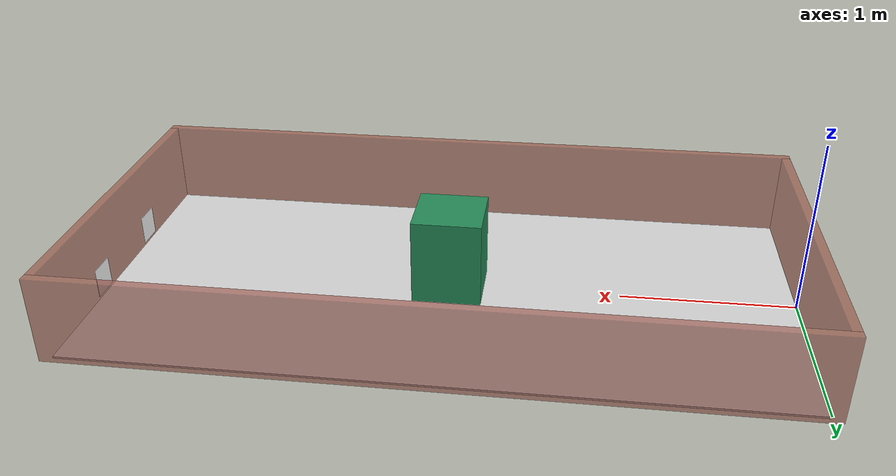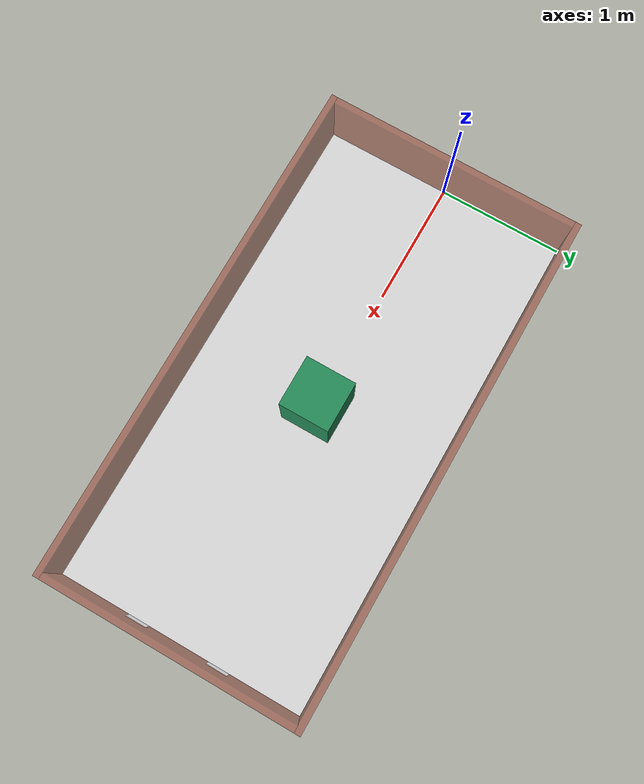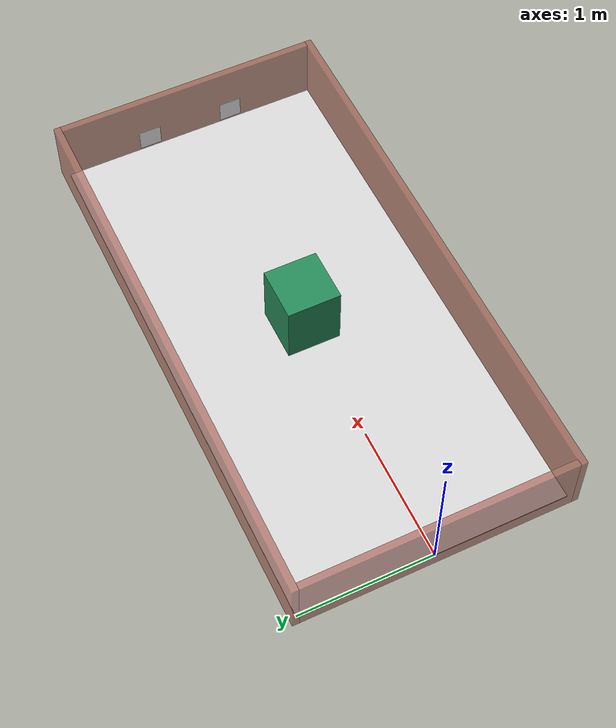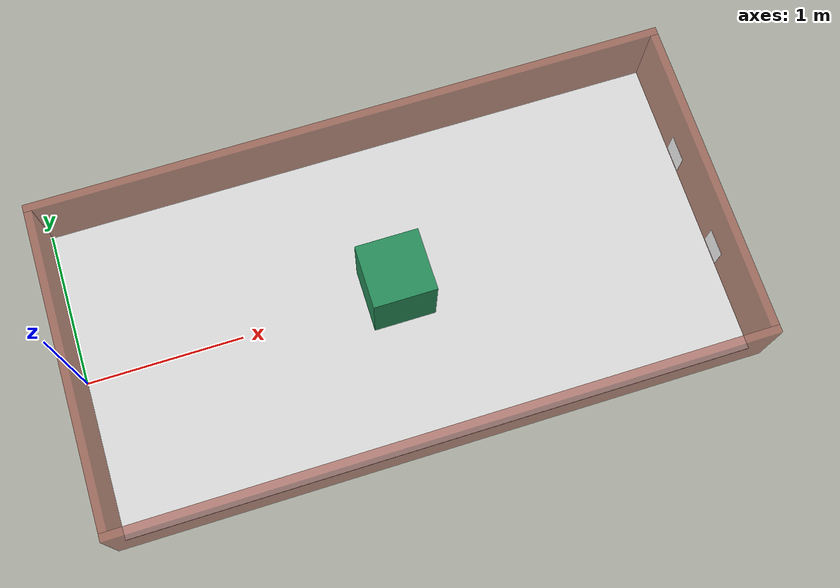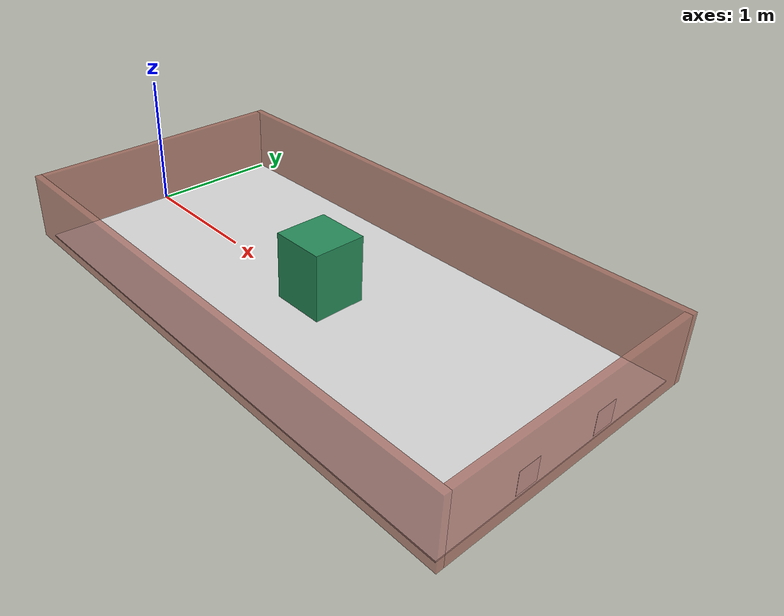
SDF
<sdf version="1.8">
 <world name="vgr_sapf">
  <plugin filename="libignition-gazebo-physics-system.so" name="ignition::gazebo::systems::Physics"/>
  <plugin filename="libignition-gazebo-user-commands-system.so" name="ignition::gazebo::systems::UserCommands"/>
  <plugin filename="libignition-gazebo-scene-broadcaster-system.so" name="ignition::gazebo::systems::SceneBroadcaster"/>
  <light type="directional" name="sun">
   <pose>0 0 10 0 0 0</pose>
   <diffuse>0.9 0.9 0.9 1</diffuse>
   <specular>0.2 0.2 0.2 1</specular>
   <direction>-0.4 0.2 -0.9</direction>
  </light>
  <model name="floor">
   <static>true</static>
   <link name="floor_link">
    <pose>2 0 -0.005 0 0 0</pose>
    <collision name="floor_collision"><geometry><box><size>4 2 0.01</size></box></geometry></collision>
    <visual name="floor_visual">
     <geometry><box><size>4 2 0.01</size></box></geometry>
     <material><ambient>0.85 0.85 0.85 1</ambient><diffuse>0.85 0.85 0.85 1</diffuse></material>
    </visual>
   </link>
  </model>
  <model name="wall_east">
   <static>true</static>
   <link name="wall_east_link">
    <pose>4.025 0 0.25 0 0 0</pose>
    <collision name="wall_east_collision"><geometry><box><size>0.05 2 0.5</size></box></geometry></collision>
    <visual name="wall_east_visual">
     <geometry><box><size>0.05 2 0.5</size></box></geometry>
     <material><ambient>0.62 0.26 0.2 0.55</ambient><diffuse>0.62 0.26 0.2 0.55</diffuse></material>
    </visual>
   </link>
  </model>
  <model name="wall_west">
   <static>true</static>
   <link name="wall_west_link">
    <pose>-0.025 0 0.25 0 0 0</pose>
    <collision name="wall_west_collision"><geometry><box><size>0.05 2 0.5</size></box></geometry></collision>
    <visual name="wall_west_visual">
     <geometry><box><size>0.05 2 0.5</size></box></geometry>
     <material><ambient>0.62 0.26 0.2 0.55</ambient><diffuse>0.62 0.26 0.2 0.55</diffuse></material>
    </visual>
   </link>
  </model>
  <model name="wall_north">
   <static>true</static>
   <link name="wall_north_link">
    <pose>2 1.025 0.25 0 0 0</pose>
    <collision name="wall_north_collision"><geometry><box><size>4.1 0.05 0.5</size></box></geometry></collision>
    <visual name="wall_north_visual">
     <geometry><box><size>4.1 0.05 0.5</size></box></geometry>
     <material><ambient>0.62 0.26 0.2 0.55</ambient><diffuse>0.62 0.26 0.2 0.55</diffuse></material>
    </visual>
   </link>
  </model>
  <model name="wall_south">
   <static>true</static>
   <link name="wall_south_link">
    <pose>2 -1.025 0.25 0 0 0</pose>
    <collision name="wall_south_collision"><geometry><box><size>4.1 0.05 0.5</size></box></geometry></collision>
    <visual name="wall_south_visual">
     <geometry><box><size>4.1 0.05 0.5</size></box></geometry>
     <material><ambient>0.62 0.26 0.2 0.55</ambient><diffuse>0.62 0.26 0.2 0.55</diffuse></material>
    </visual>
   </link>
  </model>
  <include><uri>model://marker_0</uri><pose>3.999 -0.333333333333 0.1 0 0 3.14159265359</pose></include>
  <include><uri>model://marker_1</uri><pose>3.999 0.333333333333 0.1 0 0 3.14159265359</pose></include>
  <model name="sapf_obstacle">
   <static>true</static>
   <link name="sapf_obstacle_link">
    <pose>2.0 0.0 0.25 0 0 0</pose>
    <collision name="sapf_obstacle_collision"><geometry><box><size>0.4 0.4 0.5</size></box></geometry></collision>
    <visual name="sapf_obstacle_visual">
     <geometry><box><size>0.4 0.4 0.5</size></box></geometry>
     <material><ambient>0.15 0.55 0.35 1</ambient><diffuse>0.15 0.55 0.35 1</diffuse></material>
    </visual>
   </link>
  </model>
 </world>
</sdf>

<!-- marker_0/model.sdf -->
<sdf version="1.8">
  <model name="marker_0">
    <static>true</static>
    <link name="marker_0_link">
      <collision name="marker_0_collision">
        <geometry>
          <box>
            <size>0.002 0.17 0.17</size>
          </box>
        </geometry>
      </collision>
      <visual name="marker_0_visual">
        <geometry>
          <box>
            <size>0.002 0.17 0.17</size>
          </box>
        </geometry>
        <material>
          <ambient>1 1 1 1</ambient>
          <diffuse>1 1 1 1</diffuse>
          <specular>0 0 0 1</specular>
          <emissive>1 1 1 1</emissive>
          <pbr>
            <metal>
              <albedo_map>model://marker_0/materials/textures/marker_0.png</albedo_map>
              <emissive_map>model://marker_0/materials/textures/marker_0.png</emissive_map>
            </metal>
          </pbr>
        </material>
      </visual>
    </link>
  </model>
</sdf>

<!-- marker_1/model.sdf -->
<sdf version="1.8">
  <model name="marker_1">
    <static>true</static>
    <link name="marker_1_link">
      <collision name="marker_1_collision">
        <geometry>
          <box>
            <size>0.002 0.17 0.17</size>
          </box>
        </geometry>
      </collision>
      <visual name="marker_1_visual">
        <geometry>
          <box>
            <size>0.002 0.17 0.17</size>
          </box>
        </geometry>
        <material>
          <ambient>1 1 1 1</ambient>
          <diffuse>1 1 1 1</diffuse>
          <specular>0 0 0 1</specular>
          <emissive>1 1 1 1</emissive>
          <pbr>
            <metal>
              <albedo_map>model://marker_1/materials/textures/marker_1.png</albedo_map>
              <emissive_map>model://marker_1/materials/textures/marker_1.png</emissive_map>
            </metal>
          </pbr>
        </material>
      </visual>
    </link>
  </model>
</sdf>
